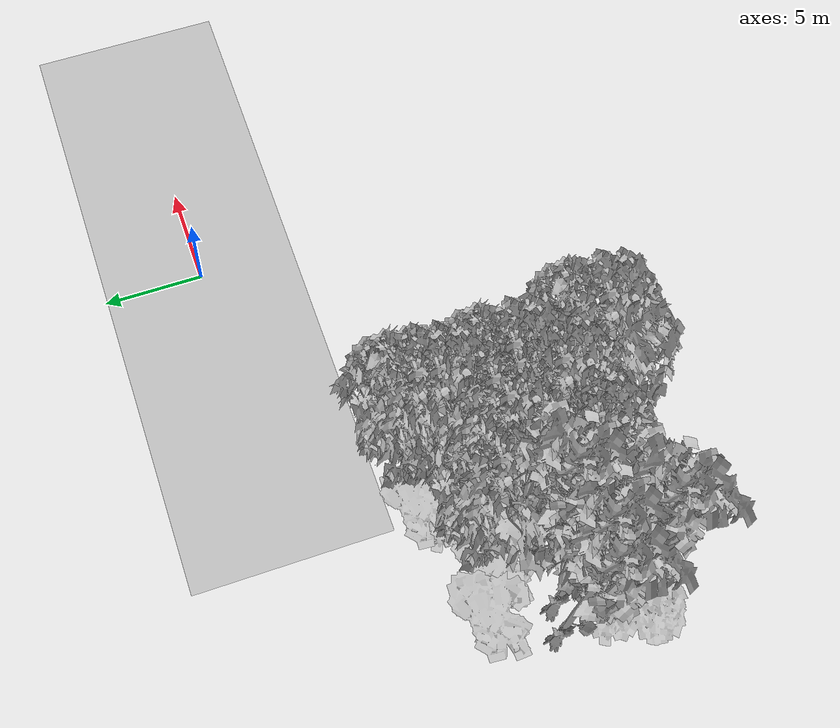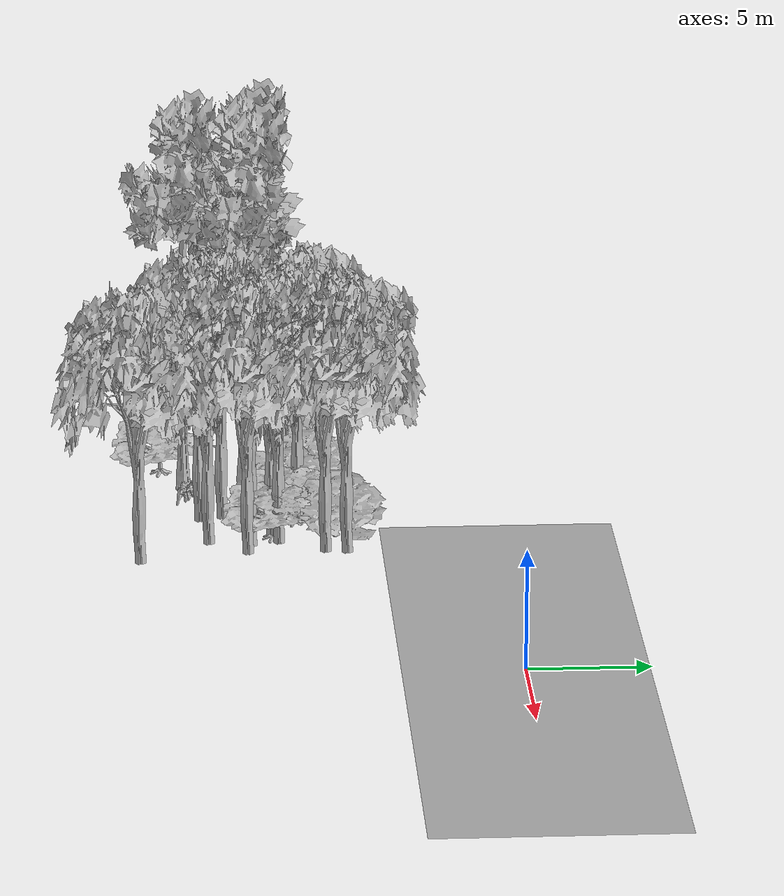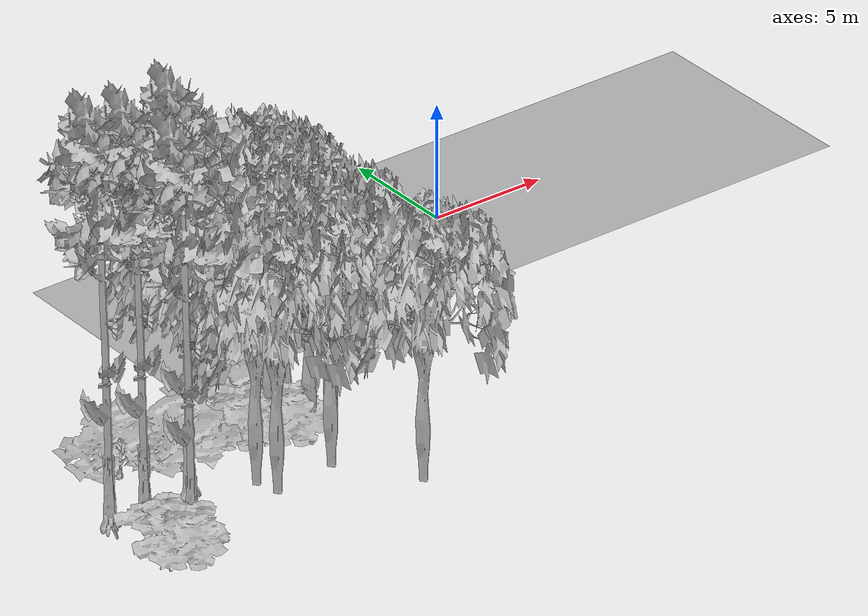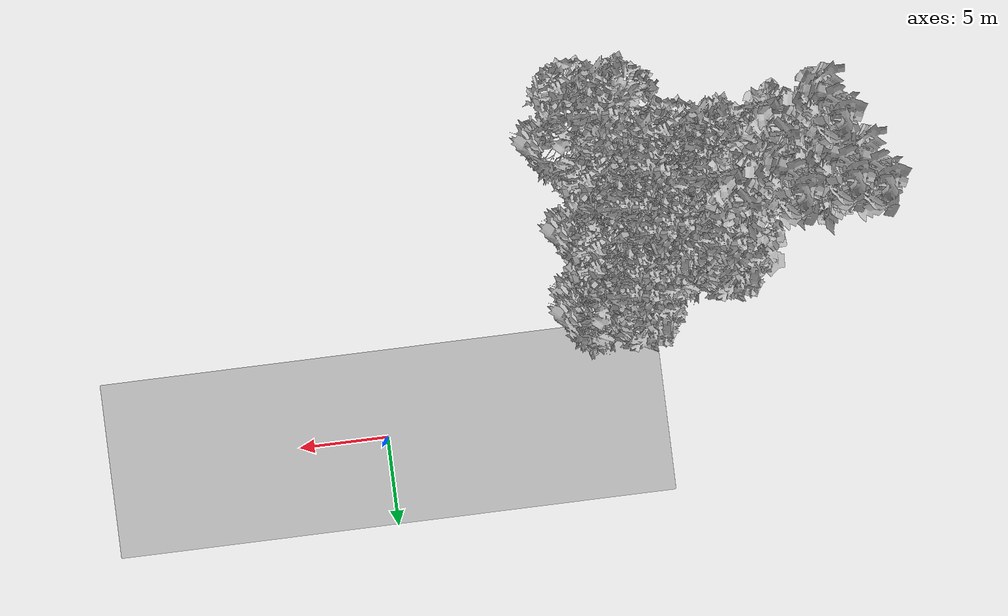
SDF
<sdf version="1.7">
 <world name="default">
  <model name="ground_plane">
   <static>1</static>
   <link name="link">
    <collision name="collision">
     <pose>-50 0 0 0 -0 0</pose>
     <geometry><plane><normal>0 0 1</normal><size>100 100</size></plane></geometry>
     <surface><contact><ode><min_depth>0.01</min_depth><max_vel>0</max_vel></ode></contact></surface>
    </collision>
    <visual name="grass">
     <cast_shadows>0</cast_shadows>
     <geometry>
      <mesh>
       <scale>0.5814285714285714 0.18142857142857144 0.1</scale>
       <uri>file://grass_plane/meshes/grass_plane.dae</uri>
      </mesh>
     </geometry>
    </visual>
   </link>
  </model>
  <model name="Tree 25">
   <static>1</static>
   <pose>-14.25757203044791 -9.172714690948657 0 1.57079 -0 0</pose>
   <link name="link">
    <collision name="collision">
     <geometry><mesh><scale>3.5 5 3.5</scale><uri>model://tree_2/meshes/tree_2.obj</uri></mesh></geometry>
    </collision>
    <visual name="visual">
     <geometry><mesh><scale>3.5 5 3.5</scale><uri>model://tree_2/meshes/tree_2.obj</uri></mesh></geometry>
    </visual>
   </link>
  </model>
  <model name="Tree 30">
   <static>1</static>
   <pose>-17.26765193191037 -11.461840166426708 0 1.57079 -0 0</pose>
   <link name="link">
    <collision name="collision">
     <geometry><mesh><scale>3.5 5 3.5</scale><uri>model://tree_2/meshes/tree_2.obj</uri></mesh></geometry>
    </collision>
    <visual name="visual">
     <geometry><mesh><scale>3.5 5 3.5</scale><uri>model://tree_2/meshes/tree_2.obj</uri></mesh></geometry>
    </visual>
   </link>
  </model>
  <model name="Tree 31">
   <static>1</static>
   <pose>-19.235276269843048 -10.087620515287782 0 1.57079 -0 0</pose>
   <link name="link">
    <collision name="collision">
     <geometry><mesh><scale>3.5 5 3.5</scale><uri>model://tree_9/meshes/tree_9.obj</uri></mesh></geometry>
    </collision>
    <visual name="visual">
     <geometry><mesh><scale>3.5 5 3.5</scale><uri>model://tree_9/meshes/tree_9.obj</uri></mesh></geometry>
    </visual>
   </link>
  </model>
  <model name="Tree 46">
   <static>1</static>
   <pose>-16.645446975290028 -8.424110646721756 0 1.57079 -0 0</pose>
   <link name="link">
    <collision name="collision">
     <geometry><mesh><scale>4 2.5 4</scale><uri>model://tree_1/meshes/tree_1.obj</uri></mesh></geometry>
    </collision>
    <visual name="visual">
     <geometry><mesh><scale>4 2.5 4</scale><uri>model://tree_1/meshes/tree_1.obj</uri></mesh></geometry>
    </visual>
   </link>
  </model>
  <model name="Tree 56">
   <static>1</static>
   <pose>-13.108493741362537 -10.507799113421074 0 1.57079 -0 0</pose>
   <link name="link">
    <collision name="collision">
     <geometry><mesh><scale>3.5 5 3.5</scale><uri>model://tree_2/meshes/tree_2.obj</uri></mesh></geometry>
    </collision>
    <visual name="visual">
     <geometry><mesh><scale>3.5 5 3.5</scale><uri>model://tree_2/meshes/tree_2.obj</uri></mesh></geometry>
    </visual>
   </link>
  </model>
  <model name="Tree 82">
   <static>1</static>
   <pose>-15.134434102651454 -6.753644105992887 0 1.57079 -0 0</pose>
   <link name="link">
    <collision name="collision">
     <geometry><mesh><scale>3 2 3</scale><uri>model://tree_3/meshes/tree_3.obj</uri></mesh></geometry>
    </collision>
    <visual name="visual">
     <geometry><mesh><scale>3 2 3</scale><uri>model://tree_3/meshes/tree_3.obj</uri></mesh></geometry>
    </visual>
   </link>
  </model>
  <model name="Tree 95">
   <static>1</static>
   <pose>-13.973509919220795 -10.337630379921805 0 1.57079 -0 0</pose>
   <link name="link">
    <collision name="collision">
     <geometry><mesh><scale>3.5 5 3.5</scale><uri>model://tree_2/meshes/tree_2.obj</uri></mesh></geometry>
    </collision>
    <visual name="visual">
     <geometry><mesh><scale>3.5 5 3.5</scale><uri>model://tree_2/meshes/tree_2.obj</uri></mesh></geometry>
    </visual>
   </link>
  </model>
  <model name="Tree 126">
   <static>1</static>
   <pose>-21.25696360371416 -13.012700764244002 0 1.57079 -0 0</pose>
   <link name="link">
    <collision name="collision">
     <geometry><mesh><scale>3.5 5 3.5</scale><uri>model://tree_9/meshes/tree_9.obj</uri></mesh></geometry>
    </collision>
    <visual name="visual">
     <geometry><mesh><scale>3.5 5 3.5</scale><uri>model://tree_9/meshes/tree_9.obj</uri></mesh></geometry>
    </visual>
   </link>
  </model>
  <model name="Tree 129">
   <static>1</static>
   <pose>-20.84212020373958 -7.935651665812874 0 1.57079 -0 0</pose>
   <link name="link">
    <collision name="collision">
     <geometry><mesh><scale>3 2 3</scale><uri>model://tree_3/meshes/tree_3.obj</uri></mesh></geometry>
    </collision>
    <visual name="visual">
     <geometry><mesh><scale>3 2 3</scale><uri>model://tree_3/meshes/tree_3.obj</uri></mesh></geometry>
    </visual>
   </link>
  </model>
  <model name="Tree 155">
   <static>1</static>
   <pose>-17.005684539055817 -12.40763513304589 0 1.57079 -0 0</pose>
   <link name="link">
    <collision name="collision">
     <geometry><mesh><scale>3.5 5 3.5</scale><uri>model://tree_2/meshes/tree_2.obj</uri></mesh></geometry>
    </collision>
    <visual name="visual">
     <geometry><mesh><scale>3.5 5 3.5</scale><uri>model://tree_2/meshes/tree_2.obj</uri></mesh></geometry>
    </visual>
   </link>
  </model>
  <model name="Tree 219">
   <static>1</static>
   <pose>-14.313393525586136 -12.101610474671434 0 1.57079 -0 0</pose>
   <link name="link">
    <collision name="collision">
     <geometry><mesh><scale>3.5 5 3.5</scale><uri>model://tree_2/meshes/tree_2.obj</uri></mesh></geometry>
    </collision>
    <visual name="visual">
     <geometry><mesh><scale>3.5 5 3.5</scale><uri>model://tree_2/meshes/tree_2.obj</uri></mesh></geometry>
    </visual>
   </link>
  </model>
  <model name="Tree 228">
   <static>1</static>
   <pose>-15.113440460649421 -9.453423731114434 0 1.57079 -0 0</pose>
   <link name="link">
    <collision name="collision">
     <geometry><mesh><scale>3.5 5 3.5</scale><uri>model://tree_2/meshes/tree_2.obj</uri></mesh></geometry>
    </collision>
    <visual name="visual">
     <geometry><mesh><scale>3.5 5 3.5</scale><uri>model://tree_2/meshes/tree_2.obj</uri></mesh></geometry>
    </visual>
   </link>
  </model>
  <model name="Tree 233">
   <static>1</static>
   <pose>-18.637259256340826 -8.922985887295582 0 1.57079 -0 0</pose>
   <link name="link">
    <collision name="collision">
     <geometry><mesh><scale>3 2 3</scale><uri>model://tree_3/meshes/tree_3.obj</uri></mesh></geometry>
    </collision>
    <visual name="visual">
     <geometry><mesh><scale>3 2 3</scale><uri>model://tree_3/meshes/tree_3.obj</uri></mesh></geometry>
    </visual>
   </link>
  </model>
  <model name="Tree 238">
   <static>1</static>
   <pose>-21.477950285375805 -10.39508444866755 0 1.57079 -0 0</pose>
   <link name="link">
    <collision name="collision">
     <geometry><mesh><scale>3.5 5 3.5</scale><uri>model://tree_9/meshes/tree_9.obj</uri></mesh></geometry>
    </collision>
    <visual name="visual">
     <geometry><mesh><scale>3.5 5 3.5</scale><uri>model://tree_9/meshes/tree_9.obj</uri></mesh></geometry>
    </visual>
   </link>
  </model>
  <model name="Tree 292">
   <static>1</static>
   <pose>-22.786266071034213 -10.02859132107427 0 1.57079 -0 0</pose>
   <link name="link">
    <collision name="collision">
     <geometry><mesh><scale>3.5 5 3.5</scale><uri>model://tree_9/meshes/tree_9.obj</uri></mesh></geometry>
    </collision>
    <visual name="visual">
     <geometry><mesh><scale>3.5 5 3.5</scale><uri>model://tree_9/meshes/tree_9.obj</uri></mesh></geometry>
    </visual>
   </link>
  </model>
  <model name="Tree 311">
   <static>1</static>
   <pose>-12.24884486500575 -14.98656731650449 0 1.57079 -0 0</pose>
   <link name="link">
    <collision name="collision">
     <geometry><mesh><scale>3.5 5 3.5</scale><uri>model://tree_2/meshes/tree_2.obj</uri></mesh></geometry>
    </collision>
    <visual name="visual">
     <geometry><mesh><scale>3.5 5 3.5</scale><uri>model://tree_2/meshes/tree_2.obj</uri></mesh></geometry>
    </visual>
   </link>
  </model>
  <model name="Tree 351">
   <static>1</static>
   <pose>-13.197974288293203 -7.27078169413079 0 1.57079 -0 0</pose>
   <link name="link">
    <collision name="collision">
     <geometry><mesh><scale>3.5 5 3.5</scale><uri>model://tree_2/meshes/tree_2.obj</uri></mesh></geometry>
    </collision>
    <visual name="visual">
     <geometry><mesh><scale>3.5 5 3.5</scale><uri>model://tree_2/meshes/tree_2.obj</uri></mesh></geometry>
    </visual>
   </link>
  </model>
  <model name="Tree 404">
   <static>1</static>
   <pose>-22.915075405773486 -13.969476082043897 0 1.57079 -0 0</pose>
   <link name="link">
    <collision name="collision">
     <geometry><mesh><scale>4 2.5 4</scale><uri>model://tree_1/meshes/tree_1.obj</uri></mesh></geometry>
    </collision>
    <visual name="visual">
     <geometry><mesh><scale>4 2.5 4</scale><uri>model://tree_1/meshes/tree_1.obj</uri></mesh></geometry>
    </visual>
   </link>
  </model>
  <model name="Tree 501">
   <static>1</static>
   <pose>-17.42992626768555 -8.250741536522094 0 1.57079 -0 0</pose>
   <link name="link">
    <collision name="collision">
     <geometry><mesh><scale>3.5 5 3.5</scale><uri>model://tree_2/meshes/tree_2.obj</uri></mesh></geometry>
    </collision>
    <visual name="visual">
     <geometry><mesh><scale>3.5 5 3.5</scale><uri>model://tree_2/meshes/tree_2.obj</uri></mesh></geometry>
    </visual>
   </link>
  </model>
  <model name="Tree 512">
   <static>1</static>
   <pose>-13.063898696714418 -6.3905364749730875 0 1.57079 -0 0</pose>
   <link name="link">
    <collision name="collision">
     <geometry><mesh><scale>3.5 5 3.5</scale><uri>model://tree_2/meshes/tree_2.obj</uri></mesh></geometry>
    </collision>
    <visual name="visual">
     <geometry><mesh><scale>3.5 5 3.5</scale><uri>model://tree_2/meshes/tree_2.obj</uri></mesh></geometry>
    </visual>
   </link>
  </model>
  <model name="Tree 517">
   <static>1</static>
   <pose>-14.841479275252077 -9.394349815455318 0 1.57079 -0 0</pose>
   <link name="link">
    <collision name="collision">
     <geometry><mesh><scale>4 2.5 4</scale><uri>model://tree_1/meshes/tree_1.obj</uri></mesh></geometry>
    </collision>
    <visual name="visual">
     <geometry><mesh><scale>4 2.5 4</scale><uri>model://tree_1/meshes/tree_1.obj</uri></mesh></geometry>
    </visual>
   </link>
  </model>
  <model name="Bush 3">
   <static>1</static>
   <pose>-20.732126100482308 -12.702905459749838 0 1.57079 -0 0</pose>
   <link name="link">
    <collision name="collision">
     <geometry><mesh><scale>2 2 2</scale><uri>model://bush_2/meshes/bush_2.obj</uri></mesh></geometry>
     <surface><contact><collide_without_contact>false</collide_without_contact></contact></surface>
    </collision>
    <visual name="visual">
     <geometry><mesh><scale>2 2 2</scale><uri>model://bush_2/meshes/bush_2.obj</uri></mesh></geometry>
    </visual>
   </link>
  </model>
 </world>
</sdf>
